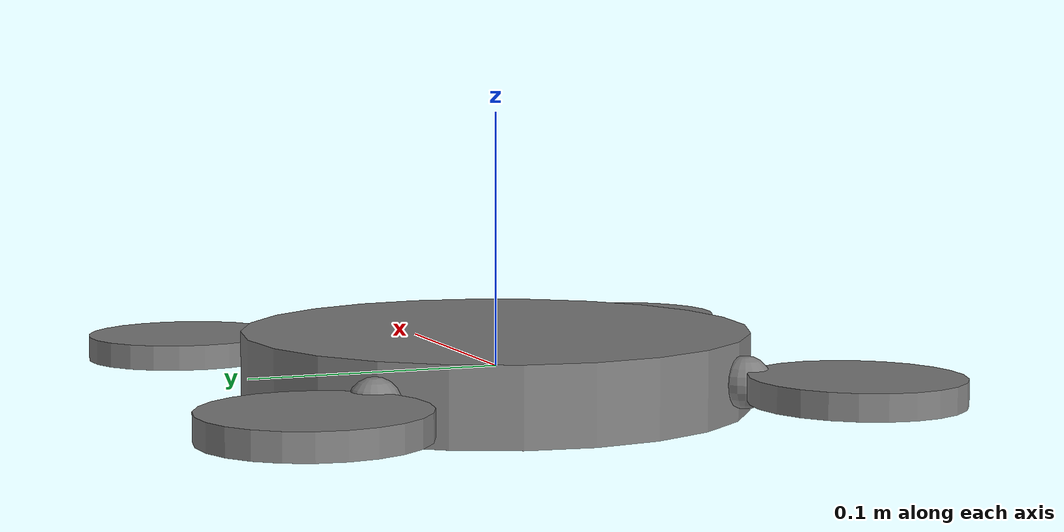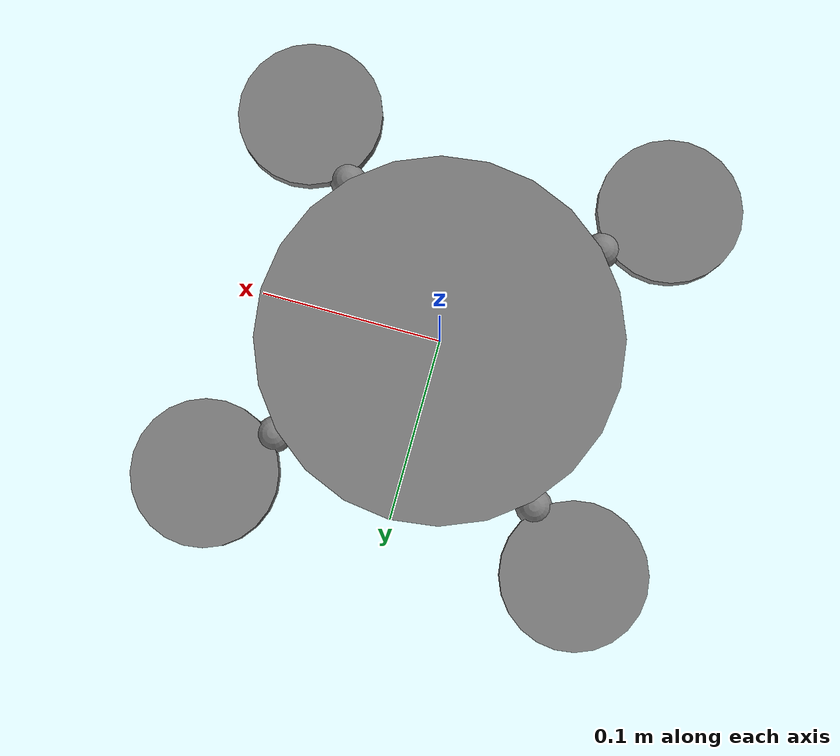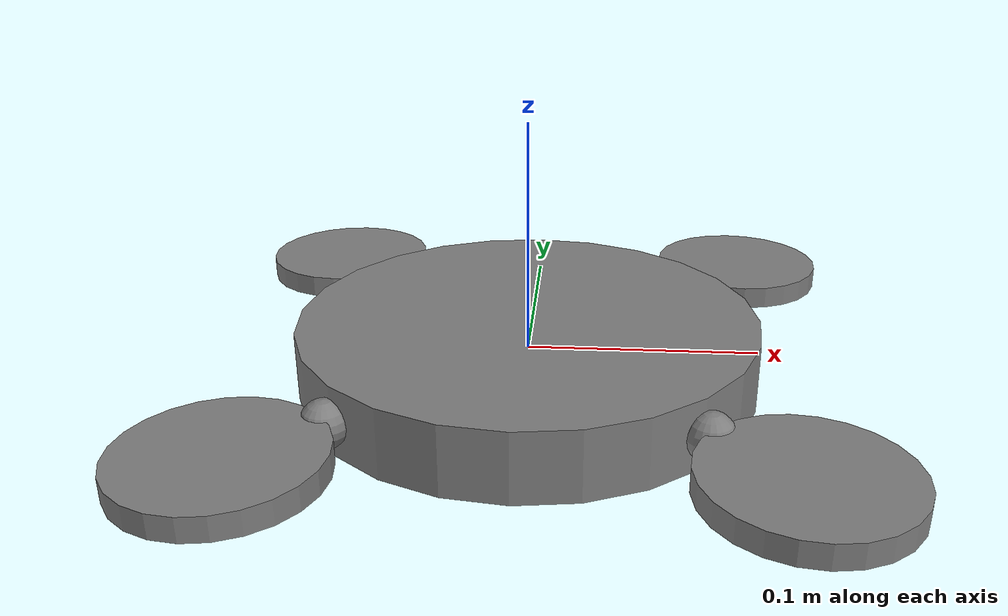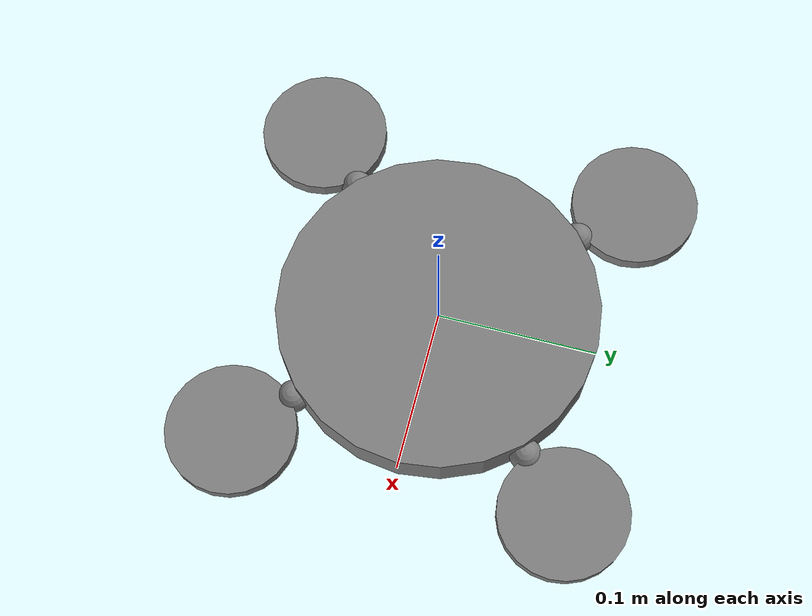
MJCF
<mujoco model="QuadcopterTier1">
  <compiler angle="degree" coordinate="local" inertiafromgeom="true" />
  <worldbody>
    <body name="chassis" pos="0 0 0">
      <geom density="50" pos="0 0 0" size="0.1 0.015" type="cylinder" />
      <joint name="root_joint" type="free" />
      <body name="rotor_arm0" pos="0.0724784 0.0724784 0" quat="0.92388 0 0 0.382683">
        <geom density="200" size="0.01" type="sphere" />
        <joint axis="0 1 0" limited="true" name="rotor_pitch0" pos="0 0 0" range="-30 30" type="hinge" />
        <body name="rotor0" pos="0.0425 0 0" quat="1 0 0 0">
          <geom density="1000" size="0.04 0.005" type="cylinder" />
          <joint axis="1 0 0" limited="true" name="rotor_roll0" pos="0 0 0" range="-30 30" type="hinge" />
        </body>
      </body>
      <body name="rotor_arm1" pos="-0.0724785 0.0724784 0" quat="0.382683 0 0 0.92388">
        <geom density="200" size="0.01" type="sphere" />
        <joint axis="0 1 0" limited="true" name="rotor_pitch1" pos="0 0 0" range="-30 30" type="hinge" />
        <body name="rotor1" pos="0.0425 0 0" quat="1 0 0 0">
          <geom density="1000" size="0.04 0.005" type="cylinder" />
          <joint axis="1 0 0" limited="true" name="rotor_roll1" pos="0 0 0" range="-30 30" type="hinge" />
        </body>
      </body>
      <body name="rotor_arm2" pos="-0.0724785 -0.0724784 0" quat="-0.382683 0 0 0.92388">
        <geom density="200" size="0.01" type="sphere" />
        <joint axis="0 1 0" limited="true" name="rotor_pitch2" pos="0 0 0" range="-30 30" type="hinge" />
        <body name="rotor2" pos="0.0425 0 0" quat="1 0 0 0">
          <geom density="1000" size="0.04 0.005" type="cylinder" />
          <joint axis="1 0 0" limited="true" name="rotor_roll2" pos="0 0 0" range="-30 30" type="hinge" />
        </body>
      </body>
      <body name="rotor_arm3" pos="0.0724784 -0.0724785 0" quat="-0.92388 0 0 0.382683">
        <geom density="200" size="0.01" type="sphere" />
        <joint axis="0 1 0" limited="true" name="rotor_pitch3" pos="0 0 0" range="-30 30" type="hinge" />
        <body name="rotor3" pos="0.0425 0 0" quat="1 0 0 0">
          <geom density="1000" size="0.04 0.005" type="cylinder" />
          <joint axis="1 0 0" limited="true" name="rotor_roll3" pos="0 0 0" range="-30 30" type="hinge" />
        </body>
      </body>
    </body>
  </worldbody>
</mujoco>
